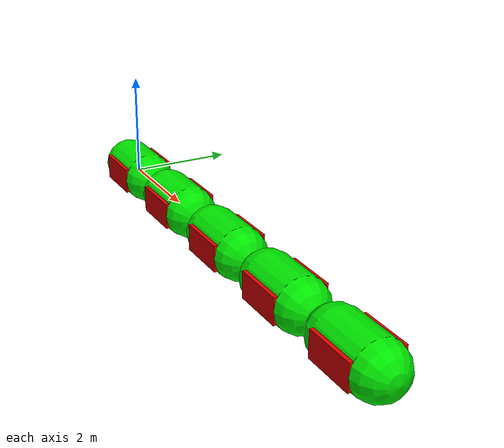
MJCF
<mujoco>
    <option timestep="0.01" integrator="Euler">
		<flag gravity="enable" energy="enable"/>
	</option>
    <compiler autolimits="true"/>
    <worldbody>
        <light diffuse=".5 .5 .5" pos="0 0 3" dir="0 0 -1"/>
        <geom type="plane" pos="0 0 -15" size="3 3 0.1" rgba=".9 0 0 1"/>
        <body name="root" pos="0 0 0" euler="0 -90 0">
            <joint name="joint0" type="ball" pos="0 0 1" damping="0.0"/>
            <inertial pos="0 0 0" euler="0 0 0" mass="1" diaginertia="0.66667 0.66667 0.66667"/>
            <geom type="capsule" size="0.5 0.5" rgba="0 .9 0 1"/>
            <geom type="box" size="0.25 0.5 0.5" rgba="0.9 0 0 1"/>
            <body name="body1" pos="0 0 -2" euler="0 0 0">
                <joint name="joint1" type="ball" pos="0 0 1" damping="0.0"/>
                <inertial pos="0 0 0" euler="0 0 0" mass="1" diaginertia="0.66667 0.66667 0.66667"/>
                <geom type="capsule" size="0.5 0.5" rgba="0 .9 0 1"/>
                <geom type="box" size="0.25 0.5 0.5" rgba="0.9 0 0 1"/>
                <body name="body2" pos="0 0 -2" euler="0 0 0">
                    <joint name="joint2" type="ball" pos="0 0 1" damping="0.0"/>
                    <inertial pos="0 0 0" euler="0 0 0" mass="1" diaginertia="0.66667 0.66667 0.66667"/>
                    <geom type="capsule" size="0.5 0.5" rgba="0 .9 0 1"/>
                    <geom type="box" size="0.25 0.5 0.5" rgba="0.9 0 0 1"/>
                    <body name="body3" pos="0 0 -2" euler="0 0 0">
                        <joint name="joint3" type="ball" pos="0 0 1" damping="0.0"/>
                        <inertial pos="0 0 0" euler="0 0 0" mass="1" diaginertia="0.66667 0.66667 0.66667"/>
                        <geom type="capsule" size="0.5 0.5" rgba="0 .9 0 1"/>
                        <geom type="box" size="0.25 0.5 0.5" rgba="0.9 0 0 1"/>
                        <body name="body4" pos="0 0 -2" euler="0 0 0">
                            <joint name="joint4" type="ball" pos="0 0 1" damping="0.0"/>
                            <inertial pos="0 0 0" euler="0 0 0" mass="1" diaginertia="0.66667 0.66667 0.66667"/>
                            <geom type="capsule" size="0.5 0.5" rgba="0 .9 0 1"/>
                            <geom type="box" size="0.25 0.5 0.5" rgba="0.9 0 0 1"/>
                        </body>
                    </body>
                </body>
            </body>
        </body>
    </worldbody>
    <keyframe>
        <key time="0" qpos="1 0 0 0 0.9659258 0.258819 0 0 1 0 0 0 1 0 0 0 1 0 0 0"/>
    </keyframe>
</mujoco>
